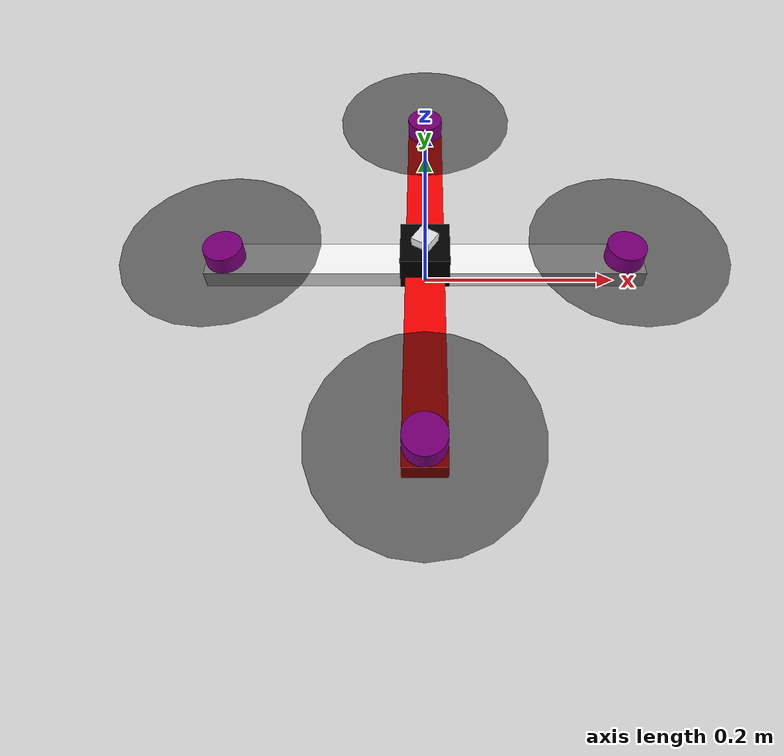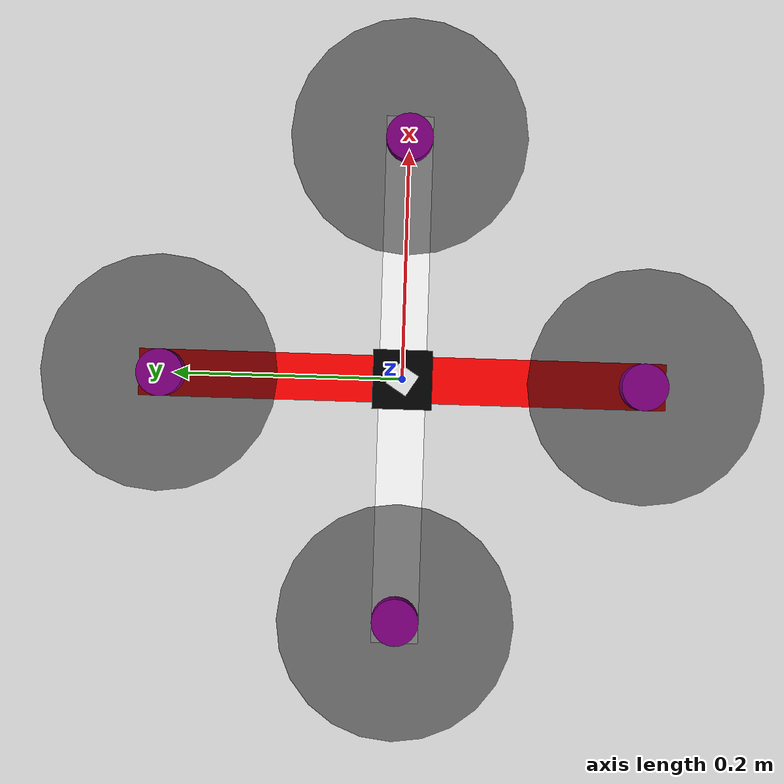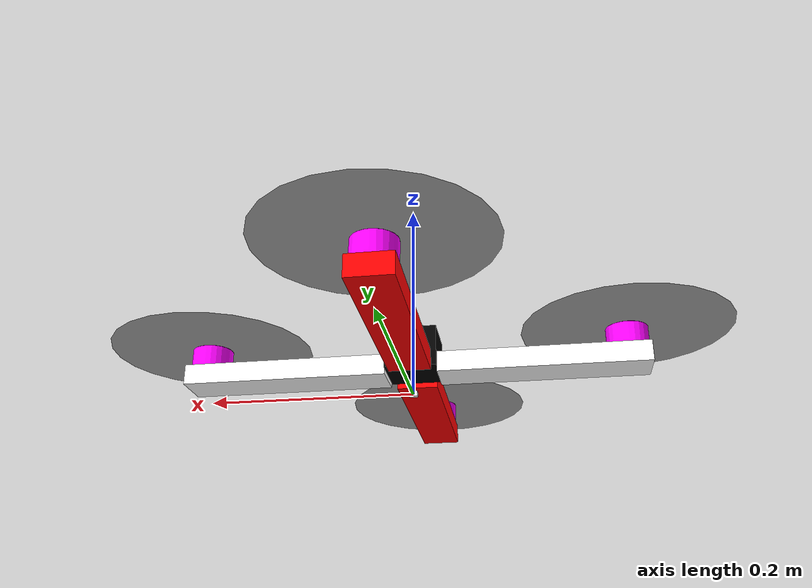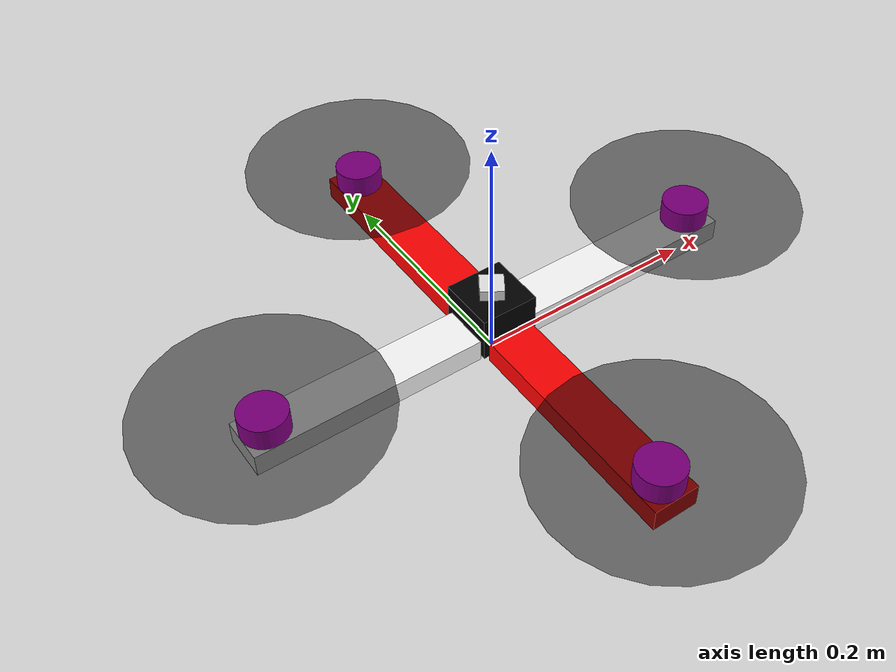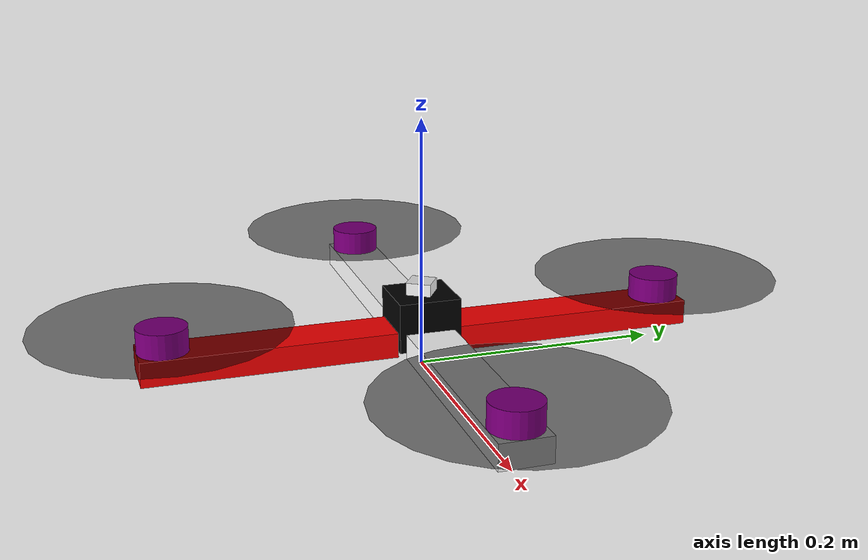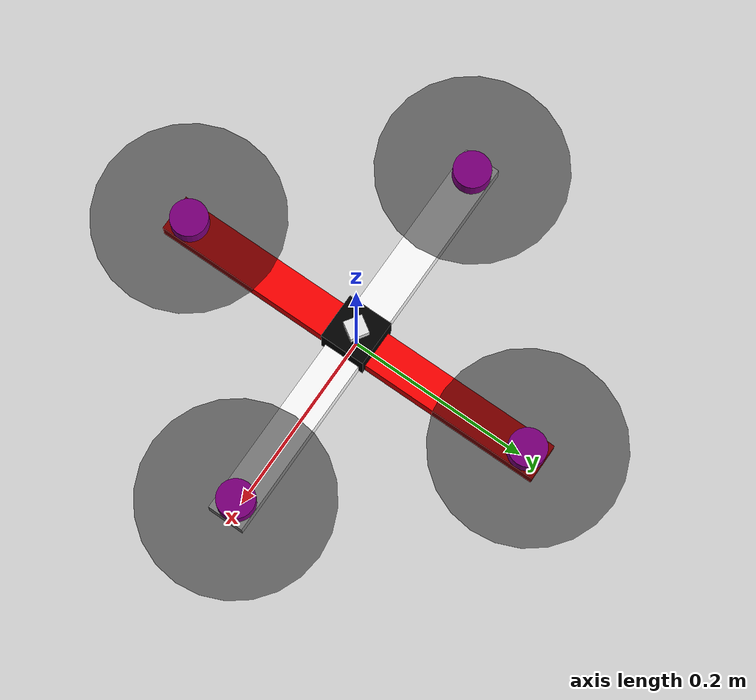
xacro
<?xml version="1.0"?>
<robot name="generic_quad_sim" xmlns:xacro="http://www.ros.org/wiki/xacro">
	<!-- Value of pi -->
	<xacro:property name="PI" value="3.14149265358979" />

	<!-- Dimensions of the base -->
	<xacro:property name="l_base" value="0.05" />
	<xacro:property name="w_base" value="0.05" />
	<xacro:property name="h_base" value="0.04" />
	<xacro:property name="base_m" value=" 0.300" />
	<xacro:property name="base_x" value="0.0" />
	<xacro:property name="base_y" value="0.0" />
	<xacro:property name="base_z" value="0.02" />
	<xacro:property name="base_offset" value="0.02"/>
	<xacro:property name="base_offset" value="0.01"/>
	<xacro:property name="base_roll" value="0.0" />
	<xacro:property name="base_pitch" value="0.0" />
	<xacro:property name="base_yaw" value="0.0" />

	<!-- Dimensions of the arms -->
	<xacro:property name="l_arm" value="0.2" />
	<xacro:property name="w_arm" value="0.04" />
	<xacro:property name="h_arm" value="0.02" />
	<xacro:property name="arm_m" value="0.01" />

	<!-- Dimensions of Motor -->
	<xacro:property name="motor_radius" value="0.02" />
	<xacro:property name="motor_height" value="0.02" />
	<xacro:property name="motor_m" value="0.08"/>

	<!-- Dimesnions of Rotor -->
	<xacro:property name="rotor_radius" value ="${l_arm*0.5}" />
	<xacro:property name="rotor_height" value="${h_arm/100.0}" />
	<xacro:property name="rotor_m" value="0.001" />

	<!-- Dimensions of the camera sensor -->
	<xacro:property name="camera_length" value="${l_base*0.1}" />
	<xacro:property name="camera_width" value="${w_base*0.1}" />
	<xacro:property name="camera_height" value="${h_base*0.2}" />
	<xacro:property name="camera_mass" value="0.03"/>
	<xacro:property name="horizontal_fov" value="${80*PI/180}"/>
	<xacro:property name="image_width" value="800"/>
	<xacro:property name="image_height" value="600"/> -->

	<!-- Dimension of the imu sensor-->
	<xacro:property name="imu_length" value="0.02"/>
	<xacro:property name="imu_width" value="0.02"/>
	<xacro:property name="imu_height" value="0.02"/>
	<xacro:property name="imu_mass" value="0.001" />

	<!-- Base Link -->

	<link name="base_link">
		<visual>
			<geometry>
				<box size="${l_base} ${w_base} ${h_base}" />
			</geometry>
			<origin xyz="${base_x} ${base_y} ${2*base_z}" rpy="${base_roll} ${base_pitch} ${base_yaw}"/>
			<material name="balck">
				<color rgba="0 0 0 1"/>
			</material>
		</visual>
		<collsion>
			<geometry>
				<box size="${l_base} ${w_base} ${h_base}" />
				<origin xyz="${base_x} ${base_y} ${base_z + base_offset}" rpy="${base_roll} ${base_pitch} ${base_yaw}"/>
			</geometry>
		</collsion>
		<inertial>
			<mass value="${base_m}"/>
			<inertia ixx="${1/12 * base_m * (w_base*w_base + l_base*l_base) }" ixy="0" ixz="0"
					 iyy="${1/12 * base_m * (w_base*w_base + h_base*h_base) }" iyz="0"
					 izz="${1/12 * base_m * (l_base*l_base + w_base*w_base) }" />
		</inertial>
	</link>

	<gazebo reference="base_link">
		<material>Gazebo/Black</material>
		<pose>0 0 0.02 0 0 0</pose>
	</gazebo>

	<!-- Imu Link -->
	<link name="imu_link">
		<visual>
			<origin xyz="${base_x} ${base_y} ${base_z}" rpy="0 0 0"/>
			<geometry>
				<box size="${imu_length} ${imu_width} ${imu_height}"/>
			</geometry>
		</visual>
		<collision>
			<origin xyz="${base_x} ${base_y} ${base_z}" rpy="0 0 0"/>
			<geometry>
				<box size="${imu_length} ${imu_width} ${imu_height}"/>
			</geometry>
		</collision>
		<inertial>
			<mass value="${imu_mass}"/>
			<origin xyz="0 0 0" rpy="0 0 0"/>
			<inertia ixx="${1/12 * imu_mass * imu_width * imu_width}" ixy="0.0" ixz="0.0"
					 iyy="${1/12 * imu_mass * imu_length *imu_length}" iyz="0.0"
					 izz="${1/12 * (imu_length * imu_length + imu_width * imu_width)}"/>
		</inertial>
	</link>

	<gazebo reference="imu_link">
		<gravity>true</gravity>
		<material>Gazebo/White</material>
		<pose>0 0 0 0 0 0</pose>
		<sensor name="imu_sensor" type="imu">
            <always_on>true</always_on>
            <update_rate>100</update_rate>
            <visualize>true</visualize>
            <topic>__default_topic__</topic>
            <plugin filename="libgazebo_ros_imu_sensor.so" name="imu_plugin">
                <topicName>imu</topicName>
                <bodyName>imu_link</bodyName>
                <updateRateHZ>100.0</updateRateHZ>
                <gaussianNoise>0.0</gaussianNoise>
                <xyzOffset>0 0 0</xyzOffset>
                <rpyOffset>0 0 0</rpyOffset>
                <frameName>imu_link</frameName>
			</plugin>
		</sensor>
	</gazebo>

	<!-- Imu Joint -->
	<joint name="base_link_to_imu_sensor" type="fixed">
		<axis xyz="0 0 1"/>
		<origin xyz="${base_x} ${base_y} ${base_z + (h_base/2)}"
				rpy="0 0 1"/>
		<parent link="base_link"/>
		<child link="imu_link"/>
	</joint>

	<!-- Camera Link -->
	<link name="bottom_camera_link">
		<visual>
			<geometry>
				<box size="${camera_length} ${camera_width} ${camera_height}" />
				<origin xyz="${base_x} ${base_y} ${base_z/2.0}" rpy="0 0 0"/>
			</geometry>
			<material name="white">
				<color rgba="1 1 1 1"/>
			</material>
		</visual>
		<collision>
			<geometry>
				<box size="${camera_length} ${camera_width} ${camera_height}" />
				<origin xyz="${base_x} ${base_y} ${base_z/2.0}" rpy="0 0 0"/>
			</geometry>
		</collision>
		<inertial>
			<mass value="${camera_mass}"/>
			<inertia ixx="${1/12 *camera_mass*(camera_width*camera_width + camera_length*camera_length)}" ixy="0"
					 ixz="0"
					 iyy="${1/12 *camera_mass*(camera_width*camera_width + camera_height*camera_height)}"
					 iyz="0"
					 izz="${1/12 *camera_mass*(camera_width*camera_width + camera_length*camera_length)}"/>
		</inertial>
	</link>
	<!-- Camera Joint -->
	<joint name="base_to_bottom_camera_link" type="fixed">
		<parent link="base_link"/>
		<child link="bottom_camera_link"/>
		<origin xyz="0 0 0" rpy="0 ${PI/2.0} 0"/>
	</joint>

	<gazebo reference="bottom_camera_link">
		<material>Gazebo/White</material>
		<sensor name="camera" type="camera">
			<update_rate>30.0</update_rate>
			<visualize>true</visualize>
			<camera name="bottom_camera">
				<horizontal_fov>1.39626</horizontal_fov>
				<image>
					<width>640</width>
					<height>480</height>
					<format>R8G8B8</format>
				</image>
				<clip>
					<near>0.1</near>
					<far>500</far>
				</clip>
				<noise>
					<type>gaussian</type>
					<mean>0.0</mean>
					<stddev>0.07</stddev>
				</noise>
			</camera>
			<plugin name="bottom_camera_controller" filename="libgazebo_ros_camera.so">
                <alwaysOn>true</alwaysOn>
                <updateRate>0.0</updateRate>
                <cameraName>generic_quad/bottom_camera</cameraName>
                <imageTopicName>image_raw</imageTopicName>
                <cameraInfoTopicName>camera_info</cameraInfoTopicName>
                <frameName>bottom_camera_link</frameName>
                <hackBaseline>0.07</hackBaseline>
                <distortionK1>0.0</distortionK1>
                <distortionK2>0.0</distortionK2>
                <distortionK3>0.0</distortionK3>
                <distortionT1>0.0</distortionT1>
                <distortionT2>0.0</distortionT2>
			</plugin>
		</sensor>
	</gazebo>

	<!-- Front Arm -->
	<link name="front_arm">
		<visual>
			<geometry>
				<box size="${l_arm} ${w_arm} ${h_arm}"/>
			</geometry>
			<origin xyz="${base_x + l_arm*0.5} 0 0" rpy="0 0 0" />
			<material name="white">
				<color rgba="1 1 1 1"/>
			</material>
		</visual>
		<!-- Front Arm Collision -->
		<collision>
			<geometry>
				<box size="${l_arm} ${w_arm} ${h_arm}"/>
			</geometry>
			<origin xyz="${base_x + l_arm*0.5} 0 0" rpy="0 0 0" />
		</collision>
		<inertial>
			<mass value="${arm_m}"/>
			<inertia ixx="${1/12 * arm_m * (w_arm*w_arm + l_arm*l_arm) }" ixy="0" ixz="0"
					 iyy="${1/12 * arm_m * (w_arm*w_arm + h_arm*h_arm) }" iyz="0"
					 izz="${1/12 * arm_m * (4*l_arm*l_arm + w_arm*w_arm) }" />
		</inertial>
	</link>

	<gazebo reference="front_arm">
		<material>Gazebo/White</material>
	</gazebo>

	<!-- Front Motor Link -->
	<link name="front_motor">
		<visual>
			<geometry>
				<cylinder radius="${motor_radius}" length="${motor_height}"/>
			</geometry>
			<origin xyz="0 0 0" rpy="0 0 0"/>
			<material name="magenta">
				<color rgba="1 0 1 1"/>
			</material>
		</visual>
		<!-- Front Motor Collision -->
		<collision>
			<geometry>
				<cylinder radius="${motor_radius}" length="${motor_height}" />
				<origin xyz="0 0 0" rpy="0 0 0"/>
			</geometry>
		</collision>
		<inertial>
			<mass value="${motor_m}"/>
			<inertia ixx="${motor_m * (3*motor_radius*motor_radius + motor_height*motor_height)/12}" ixy="0" ixz="0"
					 iyy="${motor_m * (3*motor_radius*motor_radius + motor_height*motor_height)/12}"
					 iyz="0" izz="${motor_m*motor_radius*motor_radius*0.5}"/>
		</inertial>
	</link>

	<gazebo reference="front_motor">
		<material>Gazebo/DarkMagentaTransparent</material>
	</gazebo>

	<!-- Front Rotor Link -->
	<link name="front_rotor">
		<visual>
			<geometry>
				<cylinder radius="${rotor_radius}" length="${rotor_height}"/>
			</geometry>
			<origin xyz="0.0 0 0" rpy="0 0 0"/>
			<material name="black">
				<color rgba="0 0 0 0.5"/>
			</material>
		</visual>
		<!-- Front Rotor Collision -->
		<collision>
			<geometry>
				<cylinder radius="${rotor_radius}" length="${rotor_height}"/>
				<origin xyz="0.0 0 0" rpy="0 0 0"/>
			</geometry>
		</collision>
		<inertial>
			<mass value="${rotor_m}"/>
			<inertia ixx="${rotor_m * rotor_radius*motor_radius/4}" ixy="0" ixz="0"
					 iyy="${rotor_m * rotor_radius*motor_radius/4}" iyz="0"
					 izz="${rotor_m * rotor_radius*motor_radius*0.5}"/>
		</inertial>
	</link>

	<gazebo reference="front_rotor">
		<material>Gazebo/Black</material>
	</gazebo>

	<!---                           Front Joints                         -->
	<!-- Base to the front arm -->
	<joint name="base_to_front_arm" type="fixed">
		<parent link="base_link"/>
		<child link="front_arm"/>
		<origin xyz="${l_base*0.5} 0.0 ${h_base*0.5 + base_offset*0.5}" rpy="0 0 0"/>
	</joint>
	<!-- Front Motor Joint -->
	<joint name="front_arm_to_front_motor" type="fixed">
		<parent link="front_arm"/>
		<child link="front_motor"/>
		<origin xyz="${l_arm - motor_radius} 0 ${h_arm}" rpy="0 0 0"/>
	</joint>
	<!-- Front Motor to Front Rotor -->
	<joint name="front_motor_to_front_rotor" type="continuous">
		<parent link="front_motor"/>
		<child link="front_rotor"/>
		<origin xyz="0 0 ${motor_height*0.5}" rpy="0 0 0"/>
		<axis xyz="0 0 1"/>
	</joint>

	<!-- Rear Arm -->
	<link name="rear_arm">
		<visual>
			<geometry>
				<box size="${l_arm} ${w_arm} ${h_arm}"/>
			</geometry>
			<origin xyz="${base_x + l_arm*0.5} 0 0" rpy="0 0 0" />
			<material name="white">
				<color rgba="1 1 1 1"/>
			</material>
		</visual>
		<!-- Rear Arm Collision -->
		<collision>
			<geometry>
				<box size="${l_arm} ${w_arm} ${h_arm}"/>
			</geometry>
			<origin xyz="${base_x + l_arm*0.5} 0 0" rpy="0 0 0" />
		</collision>
		<inertial>
			<mass value="${arm_m}"/>
			<inertia ixx="${1/12 * arm_m * (w_arm*w_arm + l_arm*l_arm) }" ixy="0" ixz="0"
					 iyy="${1/12 * arm_m * (w_arm*w_arm + h_arm*h_arm) }" iyz="0"
					 izz="${1/12 * arm_m * (4*l_arm*l_arm + w_arm*w_arm) }" />
		</inertial>
	</link>

	<gazebo reference="rear_arm">
		<material>Gazebo/White</material>
	</gazebo>

	<!-- Rear Motor Link -->
	<link name="rear_motor">
		<visual>
			<geometry>
				<cylinder radius="${motor_radius}" length="${motor_height}"/>
			</geometry>
			<origin xyz="0 0 0" rpy="0 0 0"/>
			<material name="magenta">
				<color rgba="1 0 1 1"/>
			</material>
		</visual>
		<!-- Rear Motor Collision -->
		<collision>
			<geometry>
				<cylinder radius="${motor_radius}" length="${motor_height}" />
				<origin xyz="0 0 0" rpy="0 0 0"/>
			</geometry>
		</collision>
		<inertial>
			<mass value="${motor_m}"/>
			<inertia ixx="${motor_m * (3*motor_radius*motor_radius + motor_height*motor_height)/12}" ixy="0" ixz="0"
					 iyy="${motor_m * (3*motor_radius*motor_radius + motor_height*motor_height)/12}"
					 iyz="0" izz="${motor_m*motor_radius*motor_radius*0.5}"/>
		</inertial>
	</link>

	<gazebo reference="rear_motor">
		<material>Gazebo/DarkMagentaTransparent</material>
	</gazebo>

	<!-- Rear Rotor Link -->
	<link name="rear_rotor">
		<visual>
			<geometry>
				<cylinder radius="${rotor_radius}" length="${rotor_height}"/>
			</geometry>
			<origin xyz="0.0 0 0" rpy="0 0 0"/>
			<material name="black">
				<color rgba="0 0 0 0.5"/>
			</material>
		</visual>
		<!-- Rear Rotor Collision -->
		<collision>
			<geometry>
				<cylinder radius="${rotor_radius}" length="${rotor_height}"/>
				<origin xyz="0.0 0 0" rpy="0 0 0"/>
			</geometry>
		</collision>
		<inertial>
			<mass value="${rotor_m}"/>
			<inertia ixx="${rotor_m * rotor_radius*motor_radius/4}" ixy="0" ixz="0"
					 iyy="${rotor_m * rotor_radius*motor_radius/4}" iyz="0"
					 izz="${rotor_m * rotor_radius*motor_radius*0.5}"/>
		</inertial>
	</link>

	<gazebo reference="rear_rotor">
		<material>Gazebo/Black</material>
	</gazebo>

	<!---                           Rear Joints                         -->
	<!-- Base to the Rear arm -->
	<joint name="base_to_rear_arm" type="fixed">
		<parent link="base_link"/>
		<child link="rear_arm"/>
		<origin xyz="${l_base*0.5*-1} 0.0 ${h_base*0.5 + base_offset*0.5}" rpy="0 0 ${PI}"/>
	</joint>
	<!-- Rear Motor Joint -->
	<joint name="rear_arm_to_rear_motor" type="fixed">
		<parent link="rear_arm"/>
		<child link="rear_motor"/>
		<origin xyz="${l_arm - motor_radius} 0 ${h_arm}" rpy="0 0 0"/>
	</joint>
	<!-- Rear Motor to Rear Rotor -->
	<joint name="rear_motor_to_rear_rotor" type="continuous">
		<parent link="rear_motor"/>
		<child link="rear_rotor"/>
		<origin xyz="0 0 ${motor_height*0.5}" rpy="0 0 0"/>
		<axis xyz="0 0 1"/>
	</joint>

	<!-- Right Arm -->
	<link name="right_arm">
		<visual>
			<geometry>
				<box size="${l_arm} ${w_arm} ${h_arm}"/>
			</geometry>
			<origin xyz="${base_x + l_arm*0.5} 0 0" rpy="0 0 0" />
			<material name="red">
				<color rgba="1 0 0 1"/>
			</material>
		</visual>
		<!-- Right Arm Collision -->
		<collision>
			<geometry>
				<box size="${l_arm} ${w_arm} ${h_arm}"/>
			</geometry>
			<origin xyz="${base_x + l_arm*0.5} 0 0" rpy="0 0 0" />
		</collision>
		<inertial>
			<mass value="${arm_m}"/>
			<inertia ixx="${1/12 * arm_m * (w_arm*w_arm + l_arm*l_arm) }" ixy="0" ixz="0"
					 iyy="${1/12 * arm_m * (w_arm*w_arm + h_arm*h_arm) }" iyz="0"
					 izz="${1/12 * arm_m * (4*l_arm*l_arm + w_arm*w_arm) }" />
		</inertial>
	</link>

	<gazebo reference="right_arm">
		<material>Gazebo/Red</material>
	</gazebo>

	<!-- Right Motor Link -->
	<link name="right_motor">
		<visual>
			<geometry>
				<cylinder radius="${motor_radius}" length="${motor_height}"/>
			</geometry>
			<origin xyz="0 0 0" rpy="0 0 0"/>
			<material name="magenta">
				<color rgba="1 0 1 1"/>
			</material>
		</visual>
		<!-- Right Motor Collision -->
		<collision>
			<geometry>
				<cylinder radius="${motor_radius}" length="${motor_height}" />
				<origin xyz="0 0 0" rpy="0 0 0"/>
			</geometry>
		</collision>
		<inertial>
			<mass value="${motor_m}"/>
			<inertia ixx="${motor_m * (3*motor_radius*motor_radius + motor_height*motor_height)/12}" ixy="0" ixz="0"
					 iyy="${motor_m * (3*motor_radius*motor_radius + motor_height*motor_height)/12}"
					 iyz="0" izz="${motor_m*motor_radius*motor_radius*0.5}"/>
		</inertial>
	</link>

	<gazebo reference="right_motor">
		<material>Gazebo/DarkMagentaTransparent</material>
	</gazebo>

	<!-- Right Rotor Link -->
	<link name="right_rotor">
		<visual>
			<geometry>
				<cylinder radius="${rotor_radius}" length="${rotor_height}"/>
			</geometry>
			<origin xyz="0.0 0 0" rpy="0 0 0"/>
			<material name="black">
				<color rgba="0 0 0 0.5"/>
			</material>
		</visual>
		<!-- Right Rotor Collision -->
		<collision>
			<geometry>
				<cylinder radius="${rotor_radius}" length="${rotor_height}"/>
				<origin xyz="0.0 0 0" rpy="0 0 0"/>
			</geometry>
		</collision>
		<inertial>
			<mass value="${rotor_m}"/>
			<inertia ixx="${rotor_m * rotor_radius*motor_radius/4}" ixy="0" ixz="0"
					 iyy="${rotor_m * rotor_radius*motor_radius/4}" iyz="0"
					 izz="${rotor_m * rotor_radius*motor_radius*0.5}"/>
		</inertial>
	</link>

	<gazebo reference="right_rotor">
		<material>Gazebo/Black</material>
	</gazebo>

	<!---                           Right Joints                         -->
	<!-- Base to the Right arm -->
	<joint name="base_to_right_arm" type="fixed">
		<parent link="base_link"/>
		<child link="right_arm"/>
		<origin xyz="0.0 ${l_base*0.5*-1} ${h_base*0.5 + base_offset*0.5}" rpy="0 0 ${-1*PI/2}"/>
	</joint>
	<!-- Right Motor Joint -->
	<joint name="right_arm_to_right_motor" type="fixed">
		<parent link="right_arm"/>
		<child link="right_motor"/>
		<origin xyz="${l_arm - motor_radius} 0 ${h_arm}" rpy="0 0 ${-1*PI/2}"/>
	</joint>
	<!-- Right Motor to Right Rotor -->
	<joint name="right_motor_to_right_rotor" type="continuous">
		<parent link="right_motor"/>
		<child link="right_rotor"/>
		<origin xyz="0 0 ${motor_height*0.5}" rpy="0 0 0"/>
		<axis xyz="0 0 1"/>
	</joint>

	<!-- Left Arm -->
	<link name="left_arm">
		<visual>
			<geometry>
				<box size="${l_arm} ${w_arm} ${h_arm}"/>
			</geometry>
			<origin xyz="${base_x + l_arm*0.5} 0 0" rpy="0 0 0" />
			<material name="red">
				<color rgba="1 0 0 1"/>
			</material>
		</visual>
		<!-- Left Arm Collision -->
		<collision>
			<geometry>
				<box size="${l_arm} ${w_arm} ${h_arm}"/>
			</geometry>
			<origin xyz="${base_x + l_arm*0.5} 0 0" rpy="0 0 0" />
		</collision>
		<inertial>
			<mass value="${arm_m}"/>
			<inertia ixx="${1/12 * arm_m * (w_arm*w_arm + l_arm*l_arm) }" ixy="0" ixz="0"
					 iyy="${1/12 * arm_m * (w_arm*w_arm + h_arm*h_arm) }" iyz="0"
					 izz="${1/12 * arm_m * (4*l_arm*l_arm + w_arm*w_arm) }" />
		</inertial>
	</link>

	<gazebo reference="left_arm">
		<material>Gazebo/Red</material>
	</gazebo>

	<!-- Left Motor Link -->
	<link name="left_motor">
		<visual>
			<geometry>
				<cylinder radius="${motor_radius}" length="${motor_height}"/>
			</geometry>
			<origin xyz="0 0 0" rpy="0 0 0"/>
			<material name="magenta">
				<color rgba="1 0 1 1"/>
			</material>
		</visual>
		<!-- Left Motor Collision -->
		<collision>
			<geometry>
				<cylinder radius="${motor_radius}" length="${motor_height}" />
				<origin xyz="0 0 0" rpy="0 0 0"/>
			</geometry>
		</collision>
		<inertial>
			<mass value="${motor_m}"/>
			<inertia ixx="${motor_m * (3*motor_radius*motor_radius + motor_height*motor_height)/12}" ixy="0" ixz="0"
					 iyy="${motor_m * (3*motor_radius*motor_radius + motor_height*motor_height)/12}"
					 iyz="0" izz="${motor_m*motor_radius*motor_radius*0.5}"/>
		</inertial>
	</link>

	<gazebo reference="left_motor">
		<material>Gazebo/DarkMagentaTransparent</material>
	</gazebo>

	<!-- Leftt Rotor Link -->
	<link name="left_rotor">
		<visual>
			<geometry>
				<cylinder radius="${rotor_radius}" length="${rotor_height}"/>
			</geometry>
			<origin xyz="0.0 0 0" rpy="0 0 0"/>
			<material name="black">
				<color rgba="0 0 0 0.5"/>
			</material>
		</visual>
		<!-- Left Rotor Collision -->
		<collision>
			<geometry>
				<cylinder radius="${rotor_radius}" length="${rotor_height}"/>
				<origin xyz="0.0 0 0" rpy="0 0 0"/>
			</geometry>
		</collision>
		<inertial>
			<mass value="${rotor_m}"/>
			<inertia ixx="${rotor_m * rotor_radius*motor_radius/4}" ixy="0" ixz="0"
					 iyy="${rotor_m * rotor_radius*motor_radius/4}" iyz="0"
					 izz="${rotor_m * rotor_radius*motor_radius*0.5}"/>
		</inertial>
	</link>

	<gazebo reference="left_rotor">
		<material>Gazebo/Black</material>
	</gazebo>

	<!---                           Left Joints                         -->
	<!-- Base to the Left arm -->
	<joint name="base_to_left_arm" type="fixed">
		<parent link="base_link"/>
		<child link="left_arm"/>
		<origin xyz="0.0 ${l_base*0.5} ${h_base*0.5 + base_offset*0.5}" rpy="0 0 ${PI/2}"/>
	</joint>
	<!-- Right Motor Joint -->
	<joint name="left_arm_to_left_motor" type="fixed">
		<parent link="left_arm"/>
		<child link="left_motor"/>
		<origin xyz="${l_arm - motor_radius} 0 ${h_arm}" rpy="0 0 ${PI/2}"/>
	</joint>
	<!-- Left Motor to Left Rotor -->
	<joint name="left_motor_to_left_rotor" type="continuous">
		<parent link="left_motor"/>
		<child link="left_rotor"/>
		<origin xyz="0 0 ${motor_height*0.5}" rpy="0 0 0"/>
		<axis xyz="0 0 1"/>
	</joint>

	<!-- Quadrotor Drive Plugin -->
	<gazebo>
		<plugin name="quadrotor_drive_controller" filename="libgeneric_quad_sim.so">
			<rosDebugLevel>Debug</rosDebugLevel>
			<publish_tf_>1</publish_tf_>
			<publishRotorTF>true</publishRotorTF>
			<publishRotorJointState>true</publishRotorJointState>
			<commandTopic>cmd_vel</commandTopic>
			<robotBaseFrame>base_link</robotBaseFrame>
			<imu_data>imu_data</imu_data>
			<forceTopic>cmd_force</forceTopic>
            <base_link>base_link</base_link>
			<forceTopic>cmd_force</forceTopic>
			<updateRate>1000.0</updateRate>
			<cameraMass>${camera_mass}</cameraMass>
			<baseMass>${base_m}</baseMass>
			<baseLength>${l_base}</baseLength>
			<armMass>${arm_m}</armMass>
			<armLength>${l_arm}</armLength>
			<motorMass>${motor_m}</motorMass>
			<motorRadius>${motor_radius}</motorRadius>
			<rotorMass>${rotor_m}</rotorMass>
			<rotorRadius>${rotor_radius}</rotorRadius>
			<rotorTorque>0.0</rotorTorque>
			<rotorAccel>0.0</rotorAccel>
			<frontJoint>front_motor_to_front_rotor</frontJoint>
			<rearJoint>rear_motor_to_rear_rotor</rearJoint>
			<leftJoint>left_motor_to_left_rotor</leftJoint>
			<rightJoint>right_motor_to_right_rotor</rightJoint>
		</plugin>
	</gazebo>

</robot>
